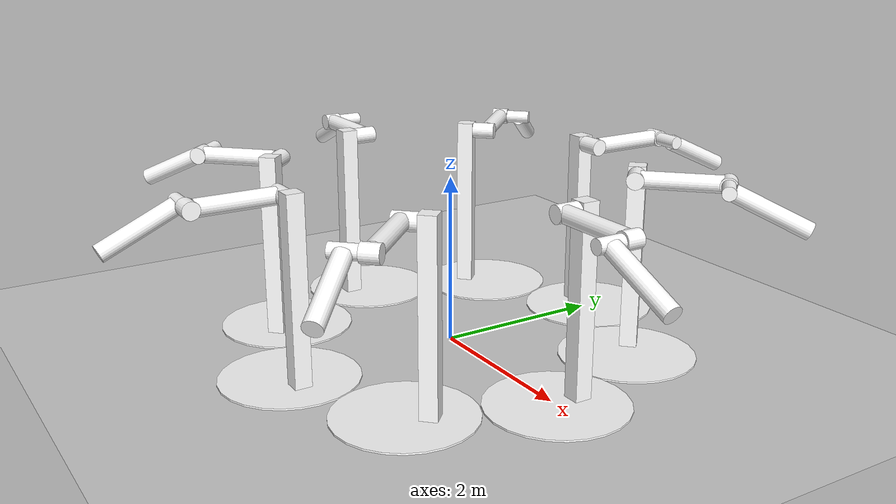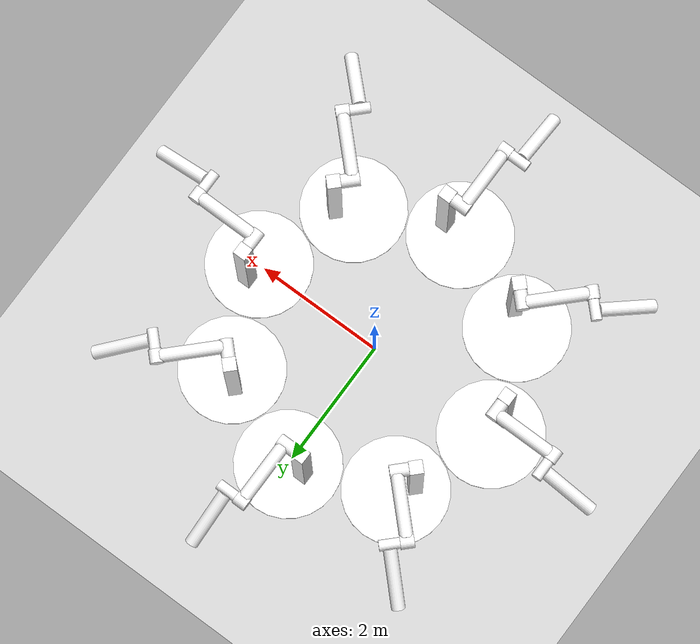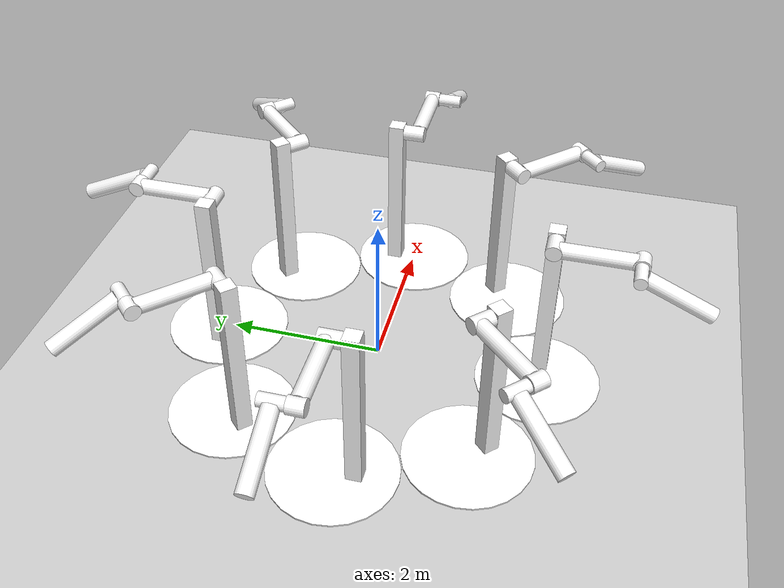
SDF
<?xml version="1.0" ?>
<sdf version="1.4">
  <world name="default">
    <physics type="ode" name="default" default="true" />
    <physics type="ode" name="unthrottled">
      <real_time_update_rate>0.0</real_time_update_rate>
      <ode>
        <solver>
          <thread_position_correction>0</thread_position_correction>
        </solver>
      </ode>
    </physics>
    <physics type="ode" name="unthrottled0">
      <real_time_update_rate>0.0</real_time_update_rate>
      <ode>
        <solver>
          <thread_position_correction>0</thread_position_correction>
          <island_threads>0</island_threads>
        </solver>
      </ode>
    </physics>
    <physics type="ode" name="unthrottled1">
      <real_time_update_rate>0.0</real_time_update_rate>
      <ode>
        <solver>
          <thread_position_correction>0</thread_position_correction>
          <island_threads>1</island_threads>
        </solver>
      </ode>
    </physics>
    <physics type="ode" name="unthrottled2">
      <real_time_update_rate>0.0</real_time_update_rate>
      <ode>
        <solver>
          <thread_position_correction>0</thread_position_correction>
          <island_threads>2</island_threads>
        </solver>
      </ode>
    </physics>
    <physics type="ode" name="unthrottled3">
      <real_time_update_rate>0.0</real_time_update_rate>
      <ode>
        <solver>
          <thread_position_correction>0</thread_position_correction>
          <island_threads>3</island_threads>
        </solver>
      </ode>
    </physics>
    <physics type="ode" name="unthrottled4">
      <real_time_update_rate>0.0</real_time_update_rate>
      <ode>
        <solver>
          <thread_position_correction>0</thread_position_correction>
          <island_threads>4</island_threads>
        </solver>
      </ode>
    </physics>
    <physics type="ode" name="unthrottled5">
      <real_time_update_rate>0.0</real_time_update_rate>
      <ode>
        <solver>
          <thread_position_correction>0</thread_position_correction>
          <island_threads>5</island_threads>
        </solver>
      </ode>
    </physics>
    <physics type="ode" name="unthrottled6">
      <real_time_update_rate>0.0</real_time_update_rate>
      <ode>
        <solver>
          <thread_position_correction>0</thread_position_correction>
          <island_threads>4</island_threads>
        </solver>
      </ode>
    </physics>
    <physics type="ode" name="split_unthrottled0">
      <real_time_update_rate>0.0</real_time_update_rate>
      <ode>
        <solver>
          <thread_position_correction>1</thread_position_correction>
          <island_threads>0</island_threads>
        </solver>
      </ode>
    </physics>
    <physics type="ode" name="split_unthrottled1">
      <real_time_update_rate>0.0</real_time_update_rate>
      <ode>
        <solver>
          <thread_position_correction>1</thread_position_correction>
          <island_threads>1</island_threads>
        </solver>
      </ode>
    </physics>
    <physics type="ode" name="split_unthrottled2">
      <real_time_update_rate>0.0</real_time_update_rate>
      <ode>
        <solver>
          <thread_position_correction>1</thread_position_correction>
          <island_threads>2</island_threads>
        </solver>
      </ode>
    </physics>
    <physics type="ode" name="split_unthrottled3">
      <real_time_update_rate>0.0</real_time_update_rate>
      <ode>
        <solver>
          <thread_position_correction>1</thread_position_correction>
          <island_threads>3</island_threads>
        </solver>
      </ode>
    </physics>
    <physics type="ode" name="split_unthrottled4">
      <real_time_update_rate>0.0</real_time_update_rate>
      <ode>
        <solver>
          <thread_position_correction>1</thread_position_correction>
          <island_threads>4</island_threads>
        </solver>
      </ode>
    </physics>
    <physics type="ode" name="split_unthrottled5">
      <real_time_update_rate>0.0</real_time_update_rate>
      <ode>
        <solver>
          <thread_position_correction>1</thread_position_correction>
          <island_threads>5</island_threads>
        </solver>
      </ode>
    </physics>
    <physics type="ode" name="split_unthrottled6">
      <real_time_update_rate>0.0</real_time_update_rate>
      <ode>
        <solver>
          <thread_position_correction>1</thread_position_correction>
          <island_threads>6</island_threads>
        </solver>
      </ode>
    </physics>
    <include>
      <uri>model://sun</uri>
    </include>
    <include>
      <uri>model://ground_plane</uri>
    </include>
    <include>
      <uri>model://double_pendulum_with_base</uri>
      <name>pendulum_0deg</name>
      <pose>0 2.1 0 0 0 0</pose>
    </include>
    <include>
      <uri>model://double_pendulum_with_base</uri>
      <name>pendulum_180deg</name>
      <pose>0 -2.1 0 0 0 3.1416</pose>
    </include>
    <include>
      <uri>model://double_pendulum_with_base</uri>
      <name>pendulum_90deg</name>
      <pose>-2.1 0 0 0 0 1.5708</pose>
    </include>
    <include>
      <uri>model://double_pendulum_with_base</uri>
      <name>pendulum_270deg</name>
      <pose>2.1 0 0 0 0 -1.5708</pose>
    </include>
    <include>
      <uri>model://double_pendulum_with_base</uri>
      <name>pendulum_315deg</name>
      <pose>1.48 1.48 0 0 0 -0.7854</pose>
    </include>
    <include>
      <uri>model://double_pendulum_with_base</uri>
      <name>pendulum_225deg</name>
      <pose>1.48 -1.48 0 0 0 -2.3562</pose>
    </include>
    <include>
      <uri>model://double_pendulum_with_base</uri>
      <name>pendulum_135deg</name>
      <pose>-1.48 -1.48 0 0 0 2.3562</pose>
    </include>
    <include>
      <uri>model://double_pendulum_with_base</uri>
      <name>pendulum_45deg</name>
      <pose>-1.48 1.48 0 0 0 0.7854</pose>
    </include>
  </world>
</sdf>

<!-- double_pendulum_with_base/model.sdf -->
<sdf version="1.5">
  <model name="double_pendulum_with_base">
    <link name="base">
      <inertial>
        <mass>100</mass>
      </inertial>
      <visual name="vis_plate_on_ground">
        <pose>0 0 0.01 0 0 0</pose>
        <geometry>
          <cylinder>
            <radius>0.8</radius>
            <length>0.02</length>
          </cylinder>
        </geometry>
        <material><diffuse>1 1 1 1</diffuse><specular>0.1 0.1 0.1 1</specular></material>
      </visual>
      <visual name="vis_pole">
        <pose>-0.275 0 1.1 0 0 0</pose>
        <geometry>
          <box>
            <size>0.2 0.2 2.2</size>
          </box>
        </geometry>
        <material><diffuse>1 1 1 1</diffuse><specular>0.1 0.1 0.1 1</specular></material>
      </visual>
      <collision name="col_plate_on_ground">
        <pose>0 0 0.01 0 0 0</pose>
        <geometry>
          <cylinder>
            <radius>0.8</radius>
            <length>0.02</length>
          </cylinder>
        </geometry>
      </collision>
      <collision name="col_pole">
        <pose>-0.275 0 1.1 0 0 0</pose>
        <geometry>
          <box>
            <size>0.2 0.2 2.2</size>
          </box>
        </geometry>
      </collision>
    </link>
    <!-- upper link, length 1, IC -90 degrees -->
    <link name="upper_link">
      <pose>0 0 2.1 -1.5708 0 0</pose>
      <self_collide>0</self_collide>
      <inertial>
        <pose>0 0 0.5 0 0 0</pose>
      </inertial>
      <visual name="vis_upper_joint">
        <pose>-0.05 0 0 0 1.5708 0</pose>
        <geometry>
          <cylinder>
            <radius>0.1</radius>
            <length>0.3</length>
          </cylinder>
        </geometry>
        <material><diffuse>1 1 1 1</diffuse><specular>0.1 0.1 0.1 1</specular></material>
      </visual>
      <visual name="vis_lower_joint">
        <pose>0 0 1.0 0 1.5708 0</pose>
        <geometry>
          <cylinder>
            <radius>0.1</radius>
            <length>0.2</length>
          </cylinder>
        </geometry>
        <material><diffuse>1 1 1 1</diffuse><specular>0.1 0.1 0.1 1</specular></material>
      </visual>
      <visual name="vis_cylinder">
        <pose>0 0 0.5 0 0 0</pose>
        <geometry>
          <cylinder>
            <radius>0.1</radius>
            <length>0.9</length>
          </cylinder>
        </geometry>
        <material><diffuse>1 1 1 1</diffuse><specular>0.1 0.1 0.1 1</specular></material>
      </visual>
      <collision name="col_upper_joint">
        <pose>-0.05 0 0 0 1.5708 0</pose>
        <geometry>
          <cylinder>
            <radius>0.1</radius>
            <length>0.3</length>
          </cylinder>
        </geometry>
      </collision>
      <collision name="col_lower_joint">
        <pose>0 0 1.0 0 1.5708 0</pose>
        <geometry>
          <cylinder>
            <radius>0.1</radius>
            <length>0.2</length>
          </cylinder>
        </geometry>
      </collision>
      <collision name="col_cylinder">
        <pose>0 0 0.5 0 0 0</pose>
        <geometry>
          <cylinder>
            <radius>0.1</radius>
            <length>0.9</length>
          </cylinder>
        </geometry>
      </collision>
    </link>
    <!-- lower link, length 1, IC ~-120 degrees more -->
    <link name="lower_link">
      <pose>0.25 1.0 2.1 -2 0 0</pose>
      <self_collide>0</self_collide>
      <inertial>
        <pose>0 0 0.5 0 0 0</pose>
      </inertial>
      <visual name="vis_lower_joint">
        <pose>0 0 0 0 1.5708 0</pose>
        <geometry>
          <cylinder>
            <radius>0.08</radius>
            <length>0.3</length>
          </cylinder>
        </geometry>
        <material><diffuse>1 1 1 1</diffuse><specular>0.1 0.1 0.1 1</specular></material>
      </visual>
      <visual name="vis_cylinder">
        <pose>0 0 0.5 0 0 0</pose>
        <geometry>
          <cylinder>
            <radius>0.1</radius>
            <length>0.9</length>
          </cylinder>
        </geometry>
        <material><diffuse>1 1 1 1</diffuse><specular>0.1 0.1 0.1 1</specular></material>
      </visual>
      <collision name="col_lower_joint">
        <pose>0 0 0 0 1.5708 0</pose>
        <geometry>
          <cylinder>
            <radius>0.08</radius>
            <length>0.3</length>
          </cylinder>
        </geometry>
      </collision>
      <collision name="col_cylinder">
        <pose>0 0 0.5 0 0 0</pose>
        <geometry>
          <cylinder>
            <radius>0.1</radius>
            <length>0.9</length>
          </cylinder>
        </geometry>
      </collision>
    </link>
    <!-- pin joint for upper link, at origin of upper link -->
    <joint name="upper_joint" type="revolute">
      <parent>base</parent>
      <child>upper_link</child>
      <axis>
        <xyz>1.0 0 0</xyz>
      </axis>
    </joint>
    <!-- pin joint for lower link, at origin of child link -->
    <joint name="lower_joint" type="revolute">
      <parent>upper_link</parent>
      <child>lower_link</child>
      <axis>
        <xyz>1.0 0 0</xyz>
      </axis>
    </joint>
  </model>
</sdf>
